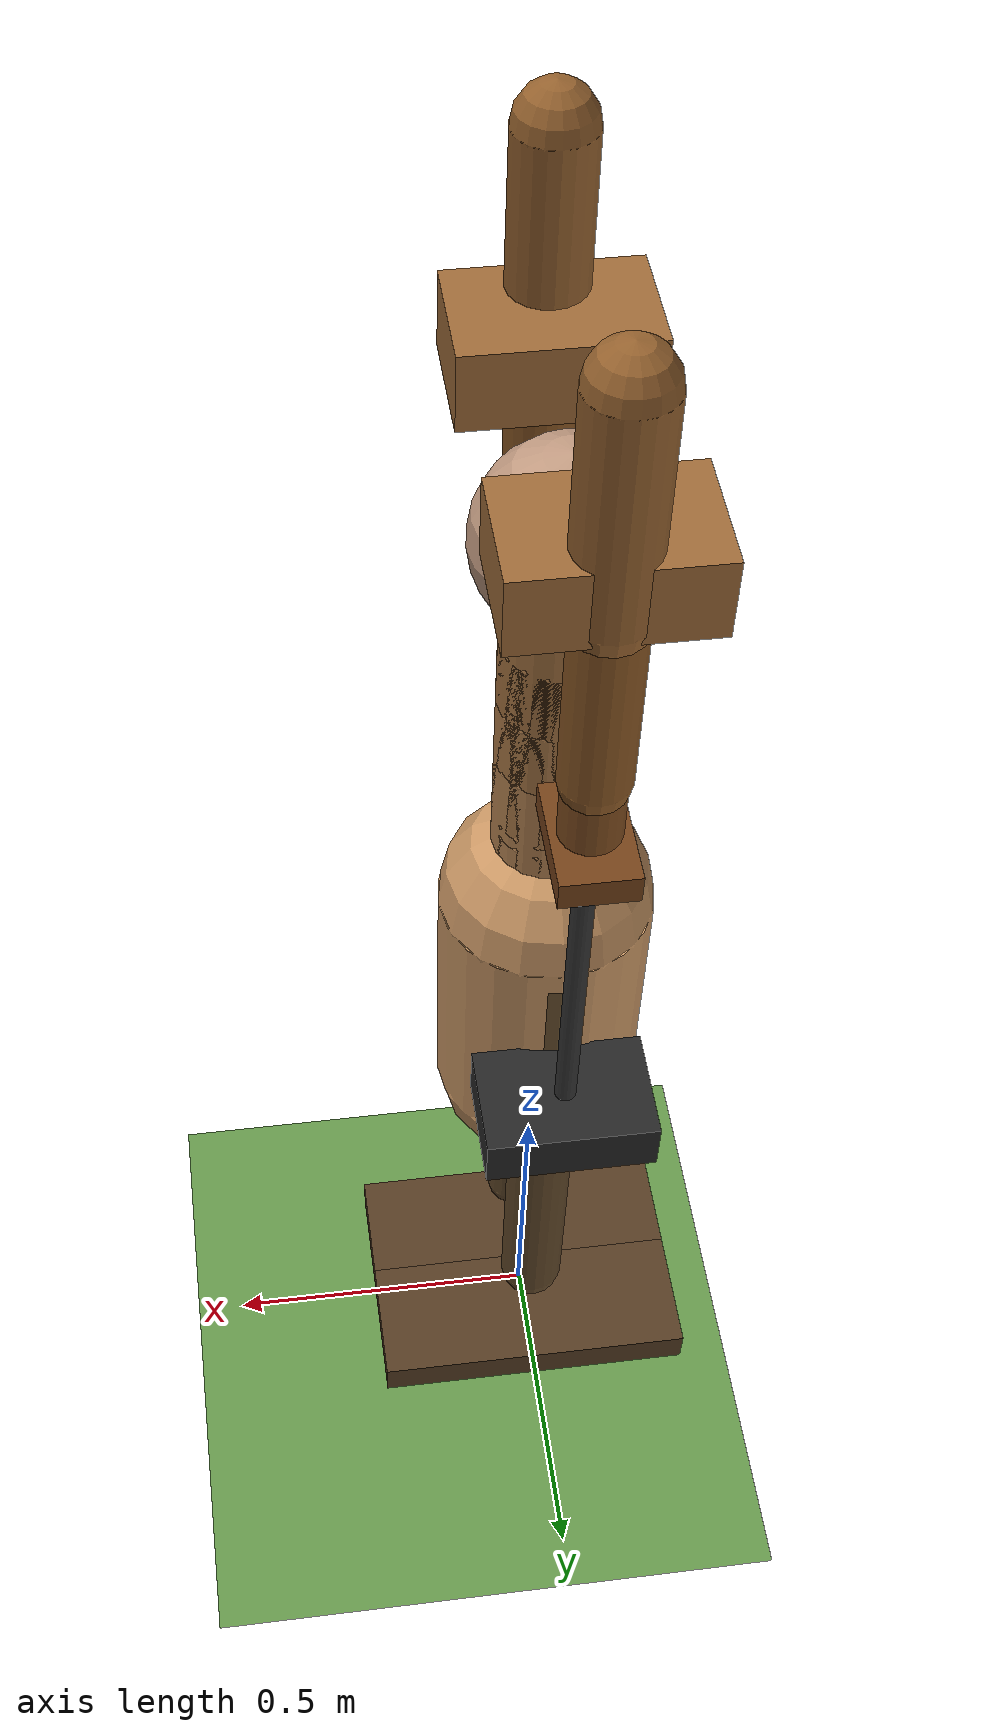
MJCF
<?xml version="1.0" ?>
<mujoco model="golfer">
  <compiler angle="radian" coordinate="local" inertiafromgeom="false"/>
  <option timestep="0.002" gravity="0 0 -9.80665" integrator="RK4"/>
  <visual>
    <global offwidth="1024" offheight="1024"/>
    <map znear="0.01" zfar="50"/>
    <headlight diffuse="0.8 0.8 0.8" ambient="0.3 0.3 0.3"/>
  </visual>
  <asset>
    <material name="ground_mat" rgba="0.4 0.6 0.3 1.0"/>
  </asset>
  <worldbody>
    <geom name="floor" type="plane" size="10 10 0.1" material="ground_mat"/>
    <light directional="true" pos="0 0 3" dir="0 0 -1"/>
    <camera name="side" pos="-5 -2 1.5" euler="0.15 0 0.35" mode="fixed"/>
    <camera name="front" pos="0 -5 1.5" euler="0.15 0 1.57" mode="fixed"/>
    <body name="pelvis" pos="0 0 0.9" euler="0 0 0">
      <freejoint name="pelvis_free"/>
      <inertial pos="0 0 0" mass="11.7" diaginertia="0.1337 0.1337 0.1337"/>
      <geom name="pelvis_geom" type="capsule" size="0.15 0.2" rgba="0.8 0.6 0.4 1" contype="2" conaffinity="1"/>
      <body name="lumbar1" pos="0 0 0.12">
        <joint name="lumbar1_dof0" type="hinge" axis="1 0 0" range="-0.7 0.52" damping="2"/>
        <joint name="lumbar1_dof1" type="hinge" axis="0 1 0" range="-0.35 0.35" damping="2"/>
        <inertial pos="0 0 0" mass="2" diaginertia="0.015 0.015 0.002"/>
        <geom name="lumbar1_geom" type="capsule" size="0.08 0.12" rgba="0.75 0.55 0.35 1" contype="2" conaffinity="1"/>
        <body name="lumbar2" pos="0 0 0.12">
          <joint name="lumbar2_dof0" type="hinge" axis="1 0 0" range="-0.7 0.52" damping="2"/>
          <joint name="lumbar2_dof1" type="hinge" axis="0 1 0" range="-0.35 0.35" damping="2"/>
          <inertial pos="0 0 0" mass="2" diaginertia="0.015 0.015 0.002"/>
          <geom name="lumbar2_geom" type="capsule" size="0.08 0.12" rgba="0.74 0.54 0.34 1" contype="2" conaffinity="1"/>
          <body name="lumbar3" pos="0 0 0.12">
            <joint name="lumbar3_dof0" type="hinge" axis="1 0 0" range="-0.7 0.52" damping="2"/>
            <joint name="lumbar3_dof1" type="hinge" axis="0 1 0" range="-0.35 0.35" damping="2"/>
            <inertial pos="0 0 0" mass="2" diaginertia="0.015 0.015 0.002"/>
            <geom name="lumbar3_geom" type="capsule" size="0.08 0.12" rgba="0.73 0.53 0.33 1" contype="2" conaffinity="1"/>
            <body name="thorax1" pos="0 0 0.12">
              <joint name="thorax1" type="hinge" axis="0 0 1" range="-1 1" damping="1.5"/>
              <inertial pos="0 0 0" mass="6" diaginertia="0.0733 0.0667 0.0333"/>
              <geom name="thorax1_geom" type="capsule" size="0.08 0.1" rgba="0.7 0.5 0.3 1" contype="2" conaffinity="1"/>
              <body name="thorax2" pos="0 0 0.1">
                <joint name="thorax2" type="hinge" axis="0 0 1" range="-1 1" damping="1.5"/>
                <inertial pos="0 0 0" mass="6" diaginertia="0.0733 0.0667 0.0333"/>
                <geom name="thorax2_geom" type="capsule" size="0.08 0.1" rgba="0.68 0.48 0.28 1" contype="2" conaffinity="1"/>
                <body name="thorax3" pos="0 0 0.1">
                  <joint name="thorax3" type="hinge" axis="0 0 1" range="-1 1" damping="1.5"/>
                  <inertial pos="0 0 0" mass="6" diaginertia="0.0734 0.0666 0.0334"/>
                  <geom name="thorax3_geom" type="capsule" size="0.08 0.1" rgba="0.66 0.46 0.26 1" contype="2" conaffinity="1"/>
                  <body name="head" pos="0 0 0.15">
                    <inertial pos="0 0 0" mass="5" diaginertia="0.03 0.03 0.03"/>
                    <geom name="head_geom" type="sphere" size="0.12" rgba="0.75 0.6 0.5 1" contype="2" conaffinity="1"/>
                  </body>
                  <body name="scapula_right" pos="0 -0.18 0.28">
                    <joint name="scapula_right_dof0" type="hinge" axis="0 0 1" range="-0.35 0.7" damping="1"/>
                    <joint name="scapula_right_dof1" type="hinge" axis="0 1 0" range="-0.52 0.52" damping="1"/>
                    <inertial pos="0 0 0" mass="1.5" diaginertia="0.005 0.005 0.002"/>
                    <geom name="scapula_right_geom" type="box" size="0.12 0.08 0.05" rgba="0.62 0.42 0.22 1" contype="2" conaffinity="1"/>
                    <body name="upper_arm_right" pos="0 -0.04 0.1">
                      <joint name="upper_arm_right_dof0" type="hinge" axis="0 1 0" range="-1.57 3.1416" damping="1.5"/>
                      <joint name="upper_arm_right_dof1" type="hinge" axis="1 0 0" range="-0.52 2.09" damping="1.5"/>
                      <joint name="upper_arm_right_dof2" type="hinge" axis="0 0 1" range="-1.57 1.57" damping="1.5"/>
                      <inertial pos="0 0 0" mass="2.5" diaginertia="0.018 0.018 0.004"/>
                      <geom name="upper_arm_right_geom" type="capsule" size="0.05 0.14" rgba="0.58 0.38 0.18 1" contype="2" conaffinity="1"/>
                      <body name="forearm_right" pos="0 0 -0.26">
                        <joint name="forearm_right_dof0" type="hinge" axis="0 1 0" range="0 2.62" damping="3"/>
                        <joint name="forearm_right_dof1" type="hinge" axis="1 0 0" range="-1.57 1.57" damping="3"/>
                        <inertial pos="0 0 0" mass="1.5" diaginertia="0.008 0.008 0.0015"/>
                        <geom name="forearm_right_geom" type="capsule" size="0.045 0.13" rgba="0.54 0.34 0.14 1" contype="2" conaffinity="1"/>
                        <body name="hand_right" pos="0 0 -0.19">
                          <joint name="hand_right_dof0" type="hinge" axis="0 1 0" range="-1.22 1.22" damping="1.5"/>
                          <joint name="hand_right_dof1" type="hinge" axis="0 0 1" range="-0.52 0.7" damping="1.5"/>
                          <inertial pos="0 0 0" mass="0.5" diaginertia="0.001 0.001 0.0005"/>
                          <geom name="hand_right_geom" type="capsule" size="0.04 0.095" rgba="0.5 0.3 0.12 1" contype="2" conaffinity="1"/>
                          <site name="hand_right_grip" pos="0 0 -0.05" size="0.01"/>
                          <body name="fingers_right" pos="0 0 -0.05">
                            <joint name="fingers_right" type="hinge" axis="0 1 0" range="0 1.57" damping="0.5"/>
                            <inertial pos="0 0 0" mass="0.2" diaginertia="0.0003 0.0003 0.0001"/>
                            <geom name="fingers_right_geom" type="box" size="0.05 0.08 0.02" rgba="0.46 0.26 0.1 1" contype="2" conaffinity="1"/>
                          </body>
                        </body>
                      </body>
                    </body>
                  </body>
                  <body name="scapula_left" pos="0 0.18 0.28">
                    <joint name="scapula_left_dof0" type="hinge" axis="0 0 1" range="-0.35 0.7" damping="1"/>
                    <joint name="scapula_left_dof1" type="hinge" axis="0 1 0" range="-0.52 0.52" damping="1"/>
                    <inertial pos="0 0 0" mass="1.5" diaginertia="0.005 0.005 0.002"/>
                    <geom name="scapula_left_geom" type="box" size="0.12 0.08 0.05" rgba="0.62 0.42 0.22 1" contype="2" conaffinity="1"/>
                    <body name="upper_arm_left" pos="0 0.04 0.1">
                      <joint name="upper_arm_left_dof0" type="hinge" axis="0 1 0" range="-1.57 3.1416" damping="1.5"/>
                      <joint name="upper_arm_left_dof1" type="hinge" axis="1 0 0" range="-0.52 2.09" damping="1.5"/>
                      <joint name="upper_arm_left_dof2" type="hinge" axis="0 0 1" range="-1.57 1.57" damping="1.5"/>
                      <inertial pos="0 0 0" mass="2.5" diaginertia="0.018 0.018 0.004"/>
                      <geom name="upper_arm_left_geom" type="capsule" size="0.05 0.14" rgba="0.58 0.38 0.18 1" contype="2" conaffinity="1"/>
                      <body name="forearm_left" pos="0 0 -0.26">
                        <joint name="forearm_left_dof0" type="hinge" axis="0 1 0" range="0 2.62" damping="3"/>
                        <joint name="forearm_left_dof1" type="hinge" axis="1 0 0" range="-1.57 1.57" damping="3"/>
                        <inertial pos="0 0 0" mass="1.5" diaginertia="0.008 0.008 0.0015"/>
                        <geom name="forearm_left_geom" type="capsule" size="0.045 0.13" rgba="0.54 0.34 0.14 1" contype="2" conaffinity="1"/>
                        <body name="hand_left" pos="0 0 -0.19">
                          <joint name="hand_left_dof0" type="hinge" axis="0 1 0" range="-1.22 1.22" damping="1.5"/>
                          <joint name="hand_left_dof1" type="hinge" axis="0 0 1" range="-0.52 0.7" damping="1.5"/>
                          <inertial pos="0 0 0" mass="0.5" diaginertia="0.001 0.001 0.0005"/>
                          <geom name="hand_left_geom" type="capsule" size="0.04 0.095" rgba="0.5 0.3 0.12 1" contype="2" conaffinity="1"/>
                          <site name="hand_left_grip" pos="0 0 -0.05" size="0.01"/>
                          <body name="fingers_left" pos="0 0 -0.05">
                            <joint name="fingers_left" type="hinge" axis="0 1 0" range="0 1.57" damping="0.5"/>
                            <inertial pos="0 0 0" mass="0.2" diaginertia="0.0003 0.0003 0.0001"/>
                            <geom name="fingers_left_geom" type="box" size="0.05 0.08 0.02" rgba="0.46 0.26 0.1 1" contype="2" conaffinity="1"/>
                          </body>
                          <body name="club_shaft" pos="0 0 -0.12">
                            <inertial pos="0 0 0" mass="0.12" diaginertia="0.02 0.02 0.0001"/>
                            <geom name="club_shaft_geom" type="capsule" size="0.015 0.5" rgba="0.2 0.2 0.2 1" contype="2" conaffinity="1"/>
                            <site name="mid_hands" pos="0 0 0.05" size="0.01"/>
                            <body name="club_head" pos="0 0 -0.5">
                              <inertial pos="0 0 0" mass="0.23" diaginertia="0.025 0.025 0.0001"/>
                              <geom name="club_head_geom" type="box" size="0.12 0.08 0.04" rgba="0.15 0.15 0.15 1" contype="2" conaffinity="1"/>
                              <site name="clubhead" pos="0 0 0" size="0.01"/>
                            </body>
                          </body>
                        </body>
                      </body>
                    </body>
                  </body>
                </body>
              </body>
            </body>
          </body>
        </body>
      </body>
      <body name="right_thigh" pos="0 -0.09 -0.05">
        <joint name="right_thigh_dof0" type="hinge" axis="0 1 0" range="-1.57 1.57" damping="2.5"/>
        <joint name="right_thigh_dof1" type="hinge" axis="1 0 0" range="-0.87 0.52" damping="2.5"/>
        <joint name="right_thigh_dof2" type="hinge" axis="0 0 1" range="-0.7 0.7" damping="2.5"/>
        <inertial pos="0 0 0" mass="7.05" diaginertia="0.1058 0.1058 0.0203"/>
        <geom name="right_thigh_geom" type="capsule" size="0.06 0.215" rgba="0.42 0.32 0.18 1" contype="2" conaffinity="1"/>
        <body name="right_shank" pos="0 0 -0.43">
          <joint name="right_shank" type="hinge" axis="0 1 0" range="0 2.62" damping="5"/>
          <inertial pos="0 0 0" mass="3.53" diaginertia="0.0401 0.0401 0.0042"/>
          <geom name="right_shank_geom" type="capsule" size="0.05 0.215" rgba="0.38 0.28 0.16 1" contype="2" conaffinity="1"/>
          <body name="right_foot" pos="0 0 -0.43">
            <joint name="right_foot_dof0" type="hinge" axis="1 0 0" range="-0.7 0.52" damping="2"/>
            <joint name="right_foot_dof1" type="hinge" axis="0 1 0" range="-0.35 0.35" damping="2"/>
            <inertial pos="0 0 0" mass="1.37" diaginertia="0.0034 0.009 0.009"/>
            <geom name="right_foot_geom" type="box" size="0.26 0.1 0.07" rgba="0.34 0.24 0.14 1" contype="2" conaffinity="1"/>
            <body name="right_toes" pos="0.12 0 -0.02">
              <joint name="right_toes" type="hinge" axis="0 1 0" range="-0.35 0.52" damping="0.5"/>
              <inertial pos="0 0 0" mass="0.3" diaginertia="0.0005 0.0005 0.0002"/>
              <geom name="right_toes_geom" type="box" size="0.1 0.08 0.03" rgba="0.32 0.22 0.12 1" contype="2" conaffinity="1"/>
            </body>
          </body>
        </body>
      </body>
      <body name="left_thigh" pos="0 0.09 -0.05">
        <joint name="left_thigh_dof0" type="hinge" axis="0 1 0" range="-1.57 1.57" damping="2.5"/>
        <joint name="left_thigh_dof1" type="hinge" axis="1 0 0" range="-0.87 0.52" damping="2.5"/>
        <joint name="left_thigh_dof2" type="hinge" axis="0 0 1" range="-0.7 0.7" damping="2.5"/>
        <inertial pos="0 0 0" mass="7.05" diaginertia="0.1058 0.1058 0.0203"/>
        <geom name="left_thigh_geom" type="capsule" size="0.06 0.215" rgba="0.42 0.32 0.18 1" contype="2" conaffinity="1"/>
        <body name="left_shank" pos="0 0 -0.43">
          <joint name="left_shank" type="hinge" axis="0 1 0" range="0 2.62" damping="5"/>
          <inertial pos="0 0 0" mass="3.53" diaginertia="0.0401 0.0401 0.0042"/>
          <geom name="left_shank_geom" type="capsule" size="0.05 0.215" rgba="0.38 0.28 0.16 1" contype="2" conaffinity="1"/>
          <body name="left_foot" pos="0 0 -0.43">
            <joint name="left_foot_dof0" type="hinge" axis="1 0 0" range="-0.7 0.52" damping="2"/>
            <joint name="left_foot_dof1" type="hinge" axis="0 1 0" range="-0.35 0.35" damping="2"/>
            <inertial pos="0 0 0" mass="1.37" diaginertia="0.0034 0.009 0.009"/>
            <geom name="left_foot_geom" type="box" size="0.26 0.1 0.07" rgba="0.34 0.24 0.14 1" contype="2" conaffinity="1"/>
            <body name="left_toes" pos="0.12 0 -0.02">
              <joint name="left_toes" type="hinge" axis="0 1 0" range="-0.35 0.52" damping="0.5"/>
              <inertial pos="0 0 0" mass="0.3" diaginertia="0.0005 0.0005 0.0002"/>
              <geom name="left_toes_geom" type="box" size="0.1 0.08 0.03" rgba="0.32 0.22 0.12 1" contype="2" conaffinity="1"/>
            </body>
          </body>
        </body>
      </body>
    </body>
  </worldbody>
  <equality>
    <weld name="right_hand_grip_weld" body1="hand_right" body2="club_shaft" relpose="0 0 0 1 0 0 0" active="true"/>
  </equality>
  <actuator>
    <motor name="act_lumbar1_dof0" joint="lumbar1_dof0" gear="1"/>
    <motor name="act_lumbar1_dof1" joint="lumbar1_dof1" gear="1"/>
    <motor name="act_lumbar2_dof0" joint="lumbar2_dof0" gear="1"/>
    <motor name="act_lumbar2_dof1" joint="lumbar2_dof1" gear="1"/>
    <motor name="act_lumbar3_dof0" joint="lumbar3_dof0" gear="1"/>
    <motor name="act_lumbar3_dof1" joint="lumbar3_dof1" gear="1"/>
    <motor name="act_thorax1" joint="thorax1" gear="1"/>
    <motor name="act_thorax2" joint="thorax2" gear="1"/>
    <motor name="act_thorax3" joint="thorax3" gear="1"/>
    <motor name="act_scapula_right_dof0" joint="scapula_right_dof0" gear="1"/>
    <motor name="act_scapula_right_dof1" joint="scapula_right_dof1" gear="1"/>
    <motor name="act_upper_arm_right_dof0" joint="upper_arm_right_dof0" gear="1"/>
    <motor name="act_upper_arm_right_dof1" joint="upper_arm_right_dof1" gear="1"/>
    <motor name="act_upper_arm_right_dof2" joint="upper_arm_right_dof2" gear="1"/>
    <motor name="act_forearm_right_dof0" joint="forearm_right_dof0" gear="1"/>
    <motor name="act_forearm_right_dof1" joint="forearm_right_dof1" gear="1"/>
    <motor name="act_hand_right_dof0" joint="hand_right_dof0" gear="1"/>
    <motor name="act_hand_right_dof1" joint="hand_right_dof1" gear="1"/>
    <motor name="act_fingers_right" joint="fingers_right" gear="1"/>
    <motor name="act_scapula_left_dof0" joint="scapula_left_dof0" gear="1"/>
    <motor name="act_scapula_left_dof1" joint="scapula_left_dof1" gear="1"/>
    <motor name="act_upper_arm_left_dof0" joint="upper_arm_left_dof0" gear="1"/>
    <motor name="act_upper_arm_left_dof1" joint="upper_arm_left_dof1" gear="1"/>
    <motor name="act_upper_arm_left_dof2" joint="upper_arm_left_dof2" gear="1"/>
    <motor name="act_forearm_left_dof0" joint="forearm_left_dof0" gear="1"/>
    <motor name="act_forearm_left_dof1" joint="forearm_left_dof1" gear="1"/>
    <motor name="act_hand_left_dof0" joint="hand_left_dof0" gear="1"/>
    <motor name="act_hand_left_dof1" joint="hand_left_dof1" gear="1"/>
    <motor name="act_fingers_left" joint="fingers_left" gear="1"/>
    <motor name="act_right_thigh_dof0" joint="right_thigh_dof0" gear="1"/>
    <motor name="act_right_thigh_dof1" joint="right_thigh_dof1" gear="1"/>
    <motor name="act_right_thigh_dof2" joint="right_thigh_dof2" gear="1"/>
    <motor name="act_right_shank" joint="right_shank" gear="1"/>
    <motor name="act_right_foot_dof0" joint="right_foot_dof0" gear="1"/>
    <motor name="act_right_foot_dof1" joint="right_foot_dof1" gear="1"/>
    <motor name="act_right_toes" joint="right_toes" gear="1"/>
    <motor name="act_left_thigh_dof0" joint="left_thigh_dof0" gear="1"/>
    <motor name="act_left_thigh_dof1" joint="left_thigh_dof1" gear="1"/>
    <motor name="act_left_thigh_dof2" joint="left_thigh_dof2" gear="1"/>
    <motor name="act_left_shank" joint="left_shank" gear="1"/>
    <motor name="act_left_foot_dof0" joint="left_foot_dof0" gear="1"/>
    <motor name="act_left_foot_dof1" joint="left_foot_dof1" gear="1"/>
    <motor name="act_left_toes" joint="left_toes" gear="1"/>
  </actuator>
</mujoco>
